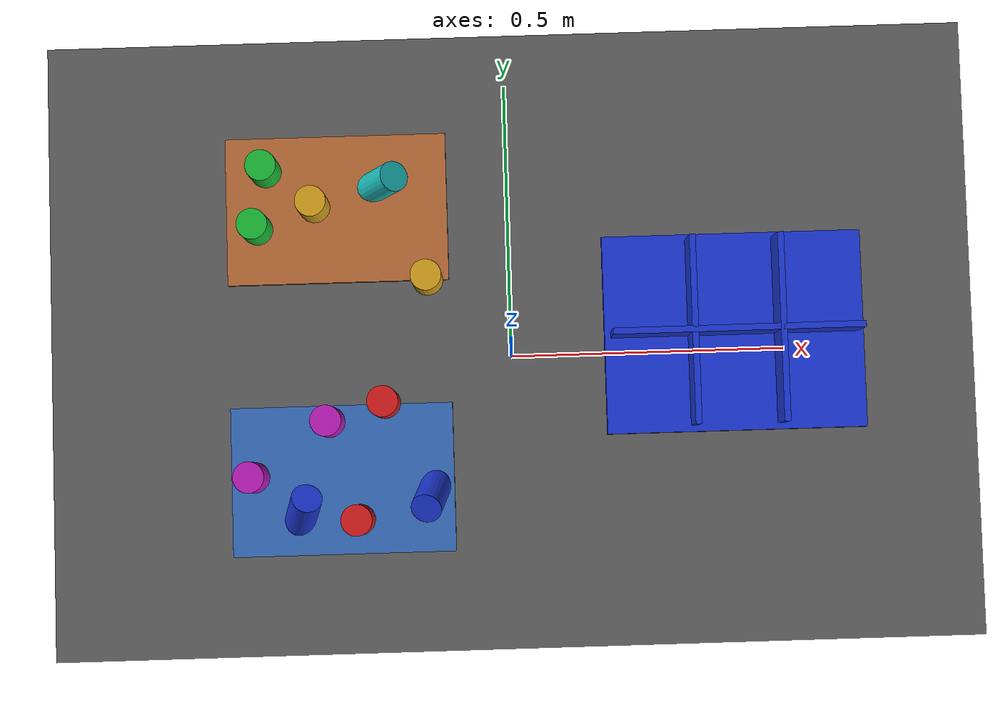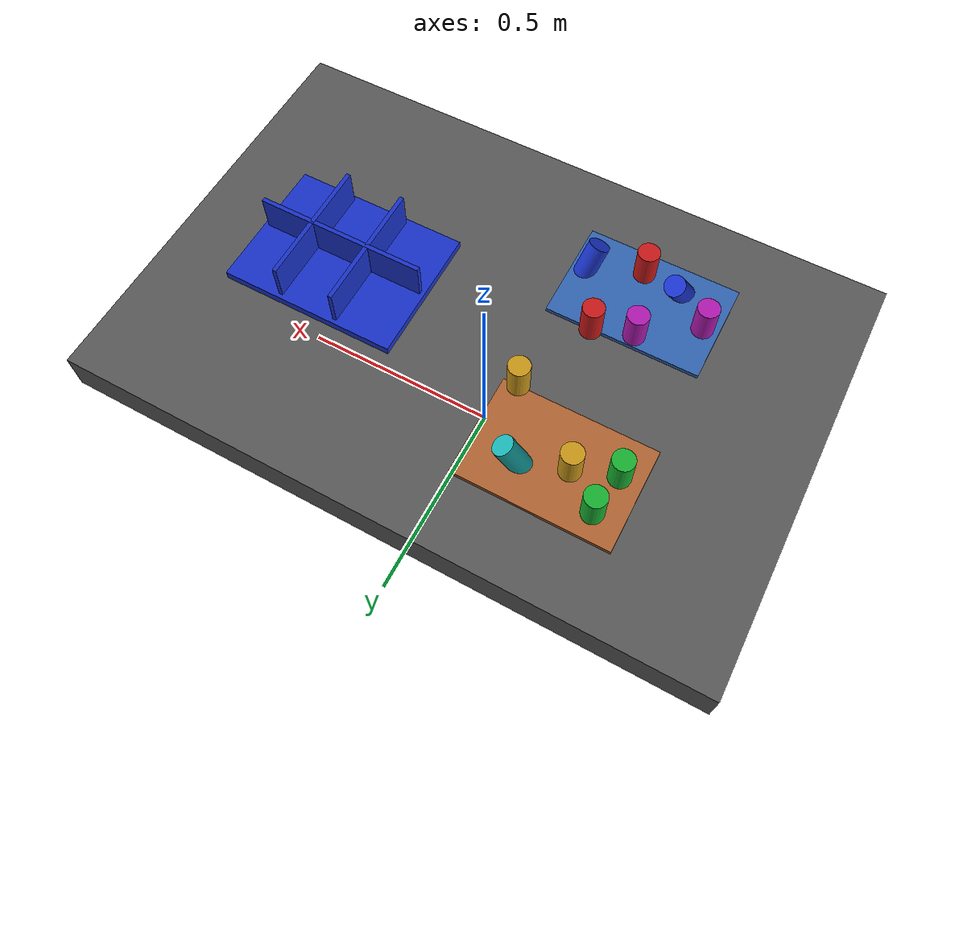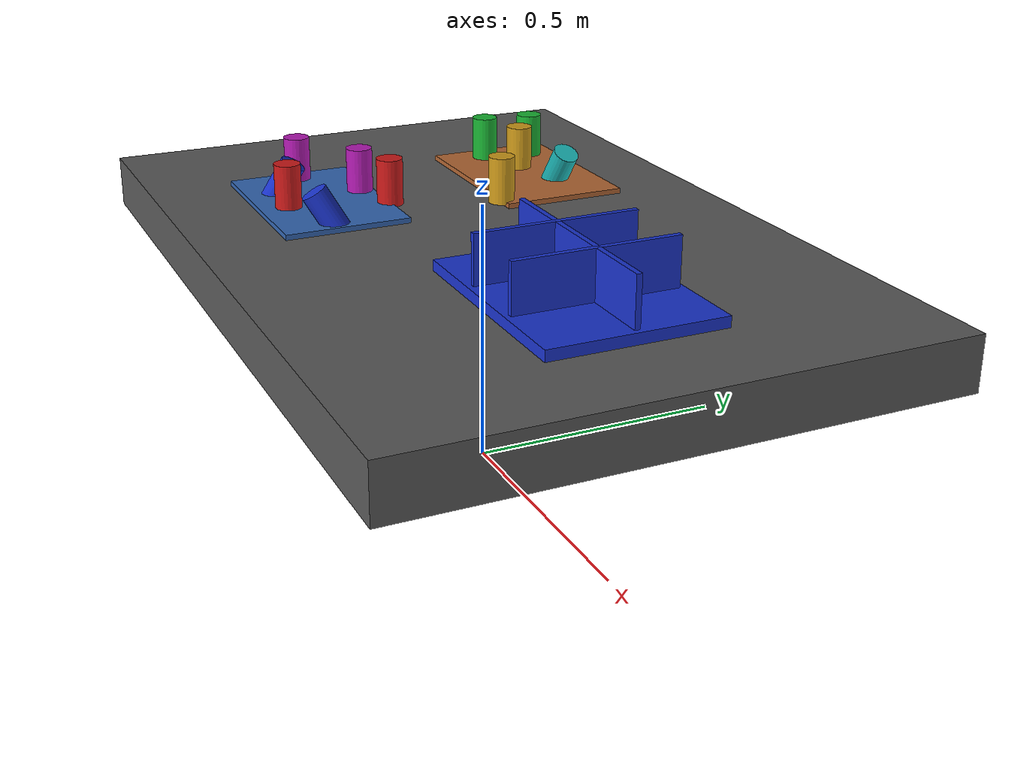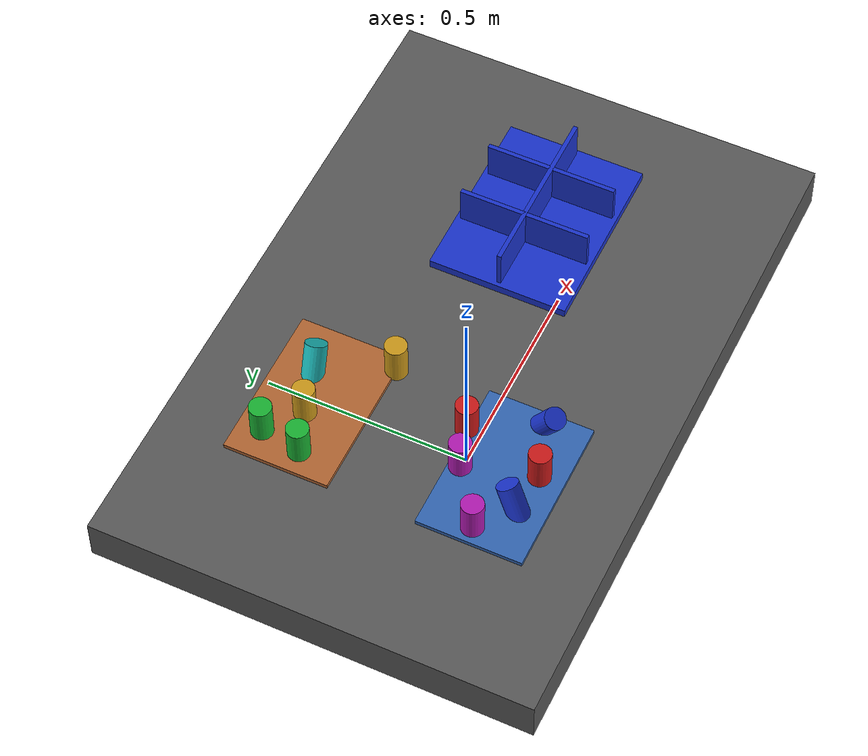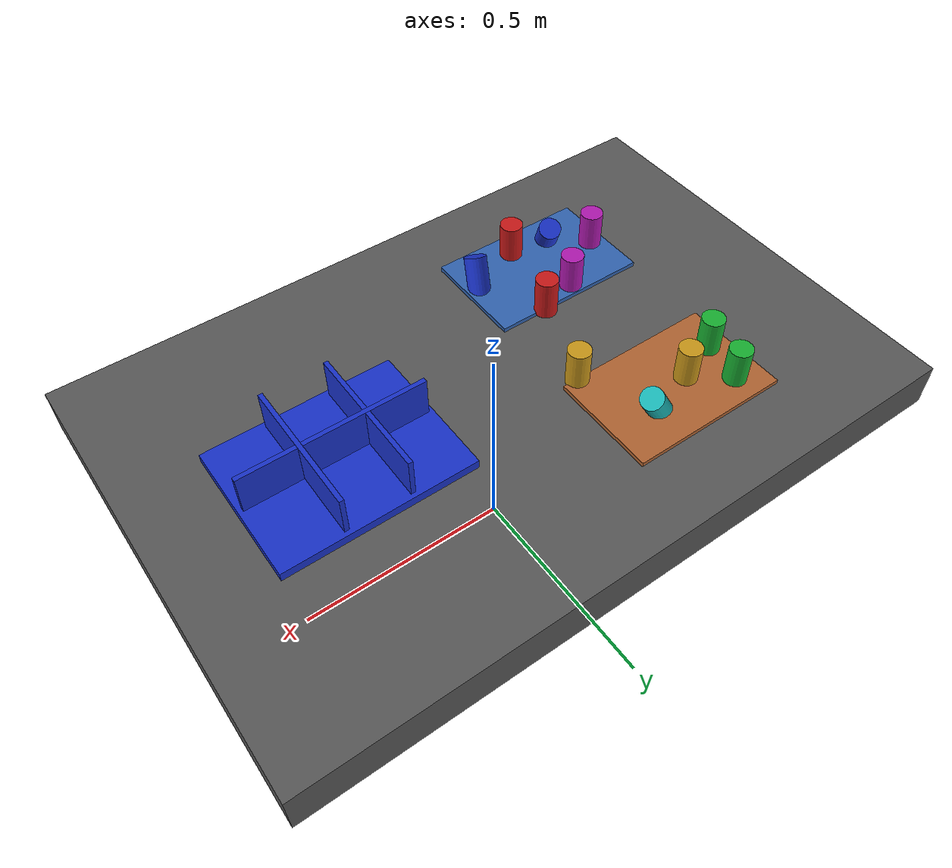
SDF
<?xml version="1.0" ?>
<sdf version="1.9">
  <!-- Standalone M1B scene.  The controller-backed Panda is spawned by the
       existing launch path; this file never alters the frozen M1A cube world. -->
  <world name="industrial_cylinder_v1">
    <physics name="bullet" type="bullet"><max_step_size>0.001</max_step_size><real_time_factor>1.0</real_time_factor></physics>
    <plugin name="gz::sim::systems::Physics" filename="gz-sim-physics-system"><engine><filename>gz-physics-bullet-featherstone-plugin</filename></engine></plugin>
    <plugin name="gz::sim::systems::UserCommands" filename="gz-sim-user-commands-system"/>
    <plugin name="gz::sim::systems::SceneBroadcaster" filename="gz-sim-scene-broadcaster-system"/>
    <plugin name="gz::sim::systems::Sensors" filename="gz-sim-sensors-system"><render_engine>ogre2</render_engine></plugin>
    <gravity>0 0 -9.81</gravity>
    <light type="directional" name="industrial_light"><pose>0 0 5 0 0 0</pose><direction>-0.3 0.2 -0.9</direction><diffuse>0.9 0.9 0.9 1</diffuse></light>
    <model name="industrial_work_table"><static>true</static><link name="link"><pose>0 0 0.4 0 0 0</pose><collision name="collision"><geometry><box><size>1.5 1.0 0.1</size></box></geometry></collision><visual name="visual"><geometry><box><size>1.5 1.0 0.1</size></box></geometry><material><diffuse>0.35 0.35 0.35 1</diffuse></material></visual></link></model>
    <model name="camera_fixture"><static>true</static><link name="camera_rgbd"><pose>-0.80 -0.80 1.40 0 0.77 0.93</pose><sensor name="front_rgbd" type="rgbd_camera"><always_on>1</always_on><update_rate>15</update_rate><topic>/xh/camera/rgbd</topic><camera><horizontal_fov>1.047</horizontal_fov><image><width>640</width><height>480</height><format>R8G8B8</format></image><clip><near>0.1</near><far>4.0</far></clip></camera></sensor></link></model>
    <model name="incoming_zone_a"><static>true</static><link name="link"><pose>-0.28 -0.22 0.455 0 0 0</pose><visual name="visual"><geometry><box><size>0.36 0.24 0.01</size></box></geometry><material><diffuse>0.2 0.4 0.7 1</diffuse></material></visual></link></model>
    <model name="incoming_zone_b"><static>true</static><link name="link"><pose>-0.28 0.22 0.455 0 0 0</pose><visual name="visual"><geometry><box><size>0.36 0.24 0.01</size></box></geometry><material><diffuse>0.7 0.4 0.2 1</diffuse></material></visual></link></model>
    <!-- M1B_RANDOM_PARTS_BEGIN -->
    <model name="cylinder_01"><pose>-0.2087 -0.0986 0.5000 0.0000 0.0000 1.8454</pose><link name="link"><inertial><mass>0.06</mass></inertial><collision name="collision"><geometry><cylinder><radius>0.025</radius><length>0.09</length></cylinder></geometry></collision><visual name="visual"><geometry><cylinder><radius>0.025</radius><length>0.09</length></cylinder></geometry><material><diffuse>0.800 0.100 0.100 1</diffuse><specular>0.15 0.15 0.15 1</specular></material></visual></link></model>
    <model name="cylinder_02"><pose>-0.4094 0.1900 0.5000 3.1416 0.0000 2.5164</pose><link name="link"><inertial><mass>0.06</mass></inertial><collision name="collision"><geometry><cylinder><radius>0.025</radius><length>0.09</length></cylinder></geometry></collision><visual name="visual"><geometry><cylinder><radius>0.025</radius><length>0.09</length></cylinder></geometry><material><diffuse>0.100 0.700 0.200 1</diffuse><specular>0.15 0.15 0.15 1</specular></material></visual></link></model>
    <model name="cylinder_03"><pose>-0.3441 -0.2689 0.4800 0.4500 -0.3000 -3.0479</pose><link name="link"><inertial><mass>0.06</mass></inertial><collision name="collision"><geometry><cylinder><radius>0.025</radius><length>0.09</length></cylinder></geometry></collision><visual name="visual"><geometry><cylinder><radius>0.025</radius><length>0.09</length></cylinder></geometry><material><diffuse>0.100 0.200 0.800 1</diffuse><specular>0.15 0.15 0.15 1</specular></material></visual></link></model>
    <model name="cylinder_04"><pose>-0.3156 0.2240 0.5000 0.0000 0.0000 1.9676</pose><link name="link"><inertial><mass>0.06</mass></inertial><collision name="collision"><geometry><cylinder><radius>0.025</radius><length>0.09</length></cylinder></geometry></collision><visual name="visual"><geometry><cylinder><radius>0.025</radius><length>0.09</length></cylinder></geometry><material><diffuse>0.800 0.600 0.100 1</diffuse><specular>0.15 0.15 0.15 1</specular></material></visual></link></model>
    <model name="cylinder_05"><pose>-0.2995 -0.1266 0.5000 3.1416 0.0000 0.6314</pose><link name="link"><inertial><mass>0.06</mass></inertial><collision name="collision"><geometry><cylinder><radius>0.025</radius><length>0.09</length></cylinder></geometry></collision><visual name="visual"><geometry><cylinder><radius>0.025</radius><length>0.09</length></cylinder></geometry><material><diffuse>0.700 0.100 0.700 1</diffuse><specular>0.15 0.15 0.15 1</specular></material></visual></link></model>
    <model name="cylinder_06"><pose>-0.2046 0.2583 0.4800 0.4500 -0.3000 2.3210</pose><link name="link"><inertial><mass>0.06</mass></inertial><collision name="collision"><geometry><cylinder><radius>0.025</radius><length>0.09</length></cylinder></geometry></collision><visual name="visual"><geometry><cylinder><radius>0.025</radius><length>0.09</length></cylinder></geometry><material><diffuse>0.100 0.700 0.700 1</diffuse><specular>0.15 0.15 0.15 1</specular></material></visual></link></model>
    <model name="cylinder_07"><pose>-0.2541 -0.2852 0.5000 0.0000 0.0000 -0.0808</pose><link name="link"><inertial><mass>0.06</mass></inertial><collision name="collision"><geometry><cylinder><radius>0.025</radius><length>0.09</length></cylinder></geometry></collision><visual name="visual"><geometry><cylinder><radius>0.025</radius><length>0.09</length></cylinder></geometry><material><diffuse>0.800 0.100 0.100 1</diffuse><specular>0.15 0.15 0.15 1</specular></material></visual></link></model>
    <model name="cylinder_08"><pose>-0.3937 0.2838 0.5000 3.1416 0.0000 0.6521</pose><link name="link"><inertial><mass>0.06</mass></inertial><collision name="collision"><geometry><cylinder><radius>0.025</radius><length>0.09</length></cylinder></geometry></collision><visual name="visual"><geometry><cylinder><radius>0.025</radius><length>0.09</length></cylinder></geometry><material><diffuse>0.100 0.700 0.200 1</diffuse><specular>0.15 0.15 0.15 1</specular></material></visual></link></model>
    <model name="cylinder_09"><pose>-0.1361 -0.2488 0.4800 0.4500 -0.3000 0.1708</pose><link name="link"><inertial><mass>0.06</mass></inertial><collision name="collision"><geometry><cylinder><radius>0.025</radius><length>0.09</length></cylinder></geometry></collision><visual name="visual"><geometry><cylinder><radius>0.025</radius><length>0.09</length></cylinder></geometry><material><diffuse>0.100 0.200 0.800 1</diffuse><specular>0.15 0.15 0.15 1</specular></material></visual></link></model>
    <model name="cylinder_10"><pose>-0.1347 0.1002 0.5000 0.0000 0.0000 1.9606</pose><link name="link"><inertial><mass>0.06</mass></inertial><collision name="collision"><geometry><cylinder><radius>0.025</radius><length>0.09</length></cylinder></geometry></collision><visual name="visual"><geometry><cylinder><radius>0.025</radius><length>0.09</length></cylinder></geometry><material><diffuse>0.800 0.600 0.100 1</diffuse><specular>0.15 0.15 0.15 1</specular></material></visual></link></model>
    <model name="cylinder_11"><pose>-0.4233 -0.2126 0.5000 3.1416 0.0000 -1.1460</pose><link name="link"><inertial><mass>0.06</mass></inertial><collision name="collision"><geometry><cylinder><radius>0.025</radius><length>0.09</length></cylinder></geometry></collision><visual name="visual"><geometry><cylinder><radius>0.025</radius><length>0.09</length></cylinder></geometry><material><diffuse>0.700 0.100 0.700 1</diffuse><specular>0.15 0.15 0.15 1</specular></material></visual></link></model>
    <!-- M1B_RANDOM_PARTS_END -->
    <model name="blue_partition_bin"><static>true</static><pose>0.36 0 0.45 0 0 0</pose><link name="link"><collision name="floor"><pose>0 0 0.01 0 0 0</pose><geometry><box><size>0.42 0.32 0.02</size></box></geometry></collision><visual name="floor_visual"><pose>0 0 0.01 0 0 0</pose><geometry><box><size>0.42 0.32 0.02</size></box></geometry><material><diffuse>0.1 0.2 0.8 1</diffuse></material></visual><visual name="row_divider"><pose>0 0 0.06 0 0 0</pose><geometry><box><size>0.40 0.01 0.10</size></box></geometry><material><diffuse>0.1 0.2 0.8 1</diffuse></material></visual><visual name="col_divider_a"><pose>-0.07 0 0.06 0 0 0</pose><geometry><box><size>0.01 0.30 0.10</size></box></geometry><material><diffuse>0.1 0.2 0.8 1</diffuse></material></visual><visual name="col_divider_b"><pose>0.07 0 0.06 0 0 0</pose><geometry><box><size>0.01 0.30 0.10</size></box></geometry><material><diffuse>0.1 0.2 0.8 1</diffuse></material></visual></link></model>
    <!-- Reserved only: second table, bin transport corridor, stackable-bin
         collision volume, and second arm mounting namespace. -->
  </world>
</sdf>
